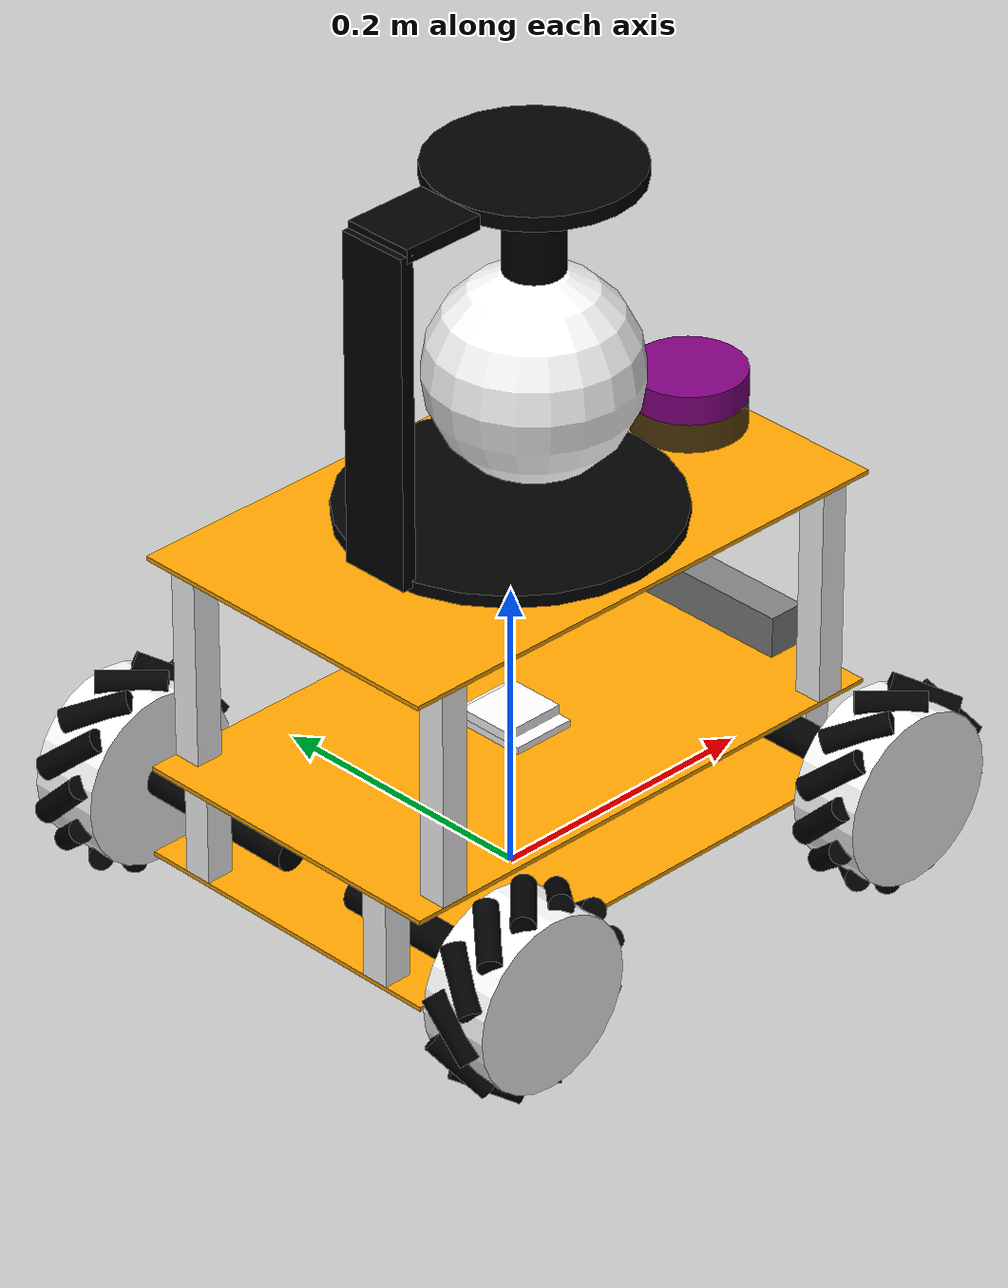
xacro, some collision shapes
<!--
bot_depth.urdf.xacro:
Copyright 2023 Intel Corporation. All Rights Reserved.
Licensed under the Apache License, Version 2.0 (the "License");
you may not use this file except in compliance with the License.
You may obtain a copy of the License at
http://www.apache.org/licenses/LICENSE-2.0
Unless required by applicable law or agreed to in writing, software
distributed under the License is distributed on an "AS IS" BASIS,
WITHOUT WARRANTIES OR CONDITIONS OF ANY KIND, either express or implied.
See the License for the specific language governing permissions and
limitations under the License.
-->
<robot xmlns:xacro="http://www.ros.org/wiki/xacro" name="bot">
    <xacro:include filename="inertia.urdf.xacro"/>
    <xacro:include filename="material.urdf.xacro"/>

    <xacro:include filename="bot_wheel.urdf.xacro"/>
    <xacro:include filename="bot_base.urdf.xacro"/>

    <!-- add camera -->
    <xacro:include filename="bot_camera.urdf.xacro"/>
    <xacro:camera_func parent="base_link_3">
        <origin xyz="0 0 0" rpy="0 0 0"/>
    </xacro:camera_func>

    <!-- add lidar -->
    <xacro:include filename="bot_lidar.urdf.xacro"/>
    <xacro:lidar_func parent="base_link_3">
        <origin xyz="${bot_length/2-lidar_radius} 0 ${bot_height/2+lidar_height/4}" rpy="0 0 0"/>
    </xacro:lidar_func>

    <!-- add depth camera -->
    <xacro:include filename="bot_depth.urdf.xacro"/>
    <xacro:sensor_d455 parent="base_link_2" use_nominal_extrinsics="false">
        <origin xyz="${bot_length/2-d455_cam_depth/2} 0 ${bot_height/2}" rpy="0 0 0"/>
    </xacro:sensor_d455>

    <!-- add imu -->
    <xacro:include filename="bot_imu.urdf.xacro"/>
    <xacro:imu_n100 parent="base_link_2">
        <origin xyz="0 0 ${bot_height/2}" rpy="0 0 0"/>
    </xacro:imu_n100>

    <!-- load gazebo plugins -->
    <xacro:include filename="bot_gazebo.xacro"/>
    <xacro:include filename="bot_gazebo_plugin.xacro"/>

</robot>

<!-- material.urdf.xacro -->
<robot xmlns:xacro="http://www.ros.org/wiki/xacro">

    <xacro:property name="alpha" value="1.0" />

    <material name="red">           <color rgba="${255/255}  ${0/255  } ${0/255  }  ${alpha}"/>    </material>
    <material name="redbright">     <color rgba="${255/255}  ${51/255 } ${51/255 }  ${alpha}"/>    </material>
    <material name="green">         <color rgba="${0/255  }  ${255/255} ${0/255  }  ${alpha}"/>    </material>
    <material name="blue">          <color rgba="${0/255  }  ${0/255  } ${255/255}  ${alpha}"/>    </material>
    <material name="skyblue">       <color rgba="${135/255}  ${206/255} ${250/255}  ${alpha}"/>    </material>
    <material name="yellow">        <color rgba="${255/255}  ${255/255} ${0/255  }  ${alpha}"/>    </material>
    <material name="zincyellow">    <color rgba="${255/255}  ${227/255} ${66/255 }  ${alpha}"/>    </material>
    <material name="darkyellow">    <color rgba="${204/255}  ${204/255} ${0/255  }  ${alpha}"/>    </material>
    <material name="purple">        <color rgba="${128/255}  ${0/255  } ${128/255}  ${alpha}"/>    </material>
    <material name="turquoise">     <color rgba="${64/255 }  ${224/255} ${208/255}  ${alpha}"/>    </material>
    <material name="orange">        <color rgba="${255/255}  ${165/255} ${0/255  }  ${alpha}"/>    </material>
    <material name="indigo">        <color rgba="${75/255 }  ${0/255  } ${130/255}  ${alpha}"/>    </material>
    <material name="white">         <color rgba="${255/255}  ${255/255} ${255/255}  ${alpha}"/>    </material>
    <material name="black">         <color rgba="${0/255  }  ${0/255  } ${0/255  }  ${alpha}"/>    </material>
    <material name="flatblack">     <color rgba="${5/255  }  ${5/255  } ${5/255  }  ${alpha}"/>    </material>
    <material name="grey">          <color rgba="${128/255}  ${128/255} ${128/255}  ${alpha}"/>    </material>
    <material name="darkgrey">      <color rgba="${64/255 }  ${64/255 } ${64/255 }  ${alpha}"/>    </material>
    <material name="plastic">       <color rgba="0.1 0.1 0.1 1"/>                                  </material>
</robot>

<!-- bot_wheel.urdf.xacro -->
<robot xmlns:xacro="http://ros.org/wiki/xacro">

    <!-- Properties -->
    <xacro:property name="roller_mass" value="0.02"/>
    <xacro:property name="roller_radius" value="0.008"/>
    <xacro:property name="roller_length" value="0.046"/>
    <xacro:property name="roller_number" value="12"/>

    <xacro:property name="wheel_radius" value="0.0635" />

    <xacro:property name="wheel_internal_radius" value="${wheel_radius-roller_radius/2}" />
    <xacro:property name="wheel_width" value="0.05" />
    <xacro:property name="wheel_mass" value="0.5" />

    <!-- Mecanum Wheel Macro -->
    <xacro:macro name="mecanum_wheel" params="name roller_angle">

        <!-- Derived Properties -->
        <xacro:property name="I_wheel_xx_yy" value="0.0250833333333333"/>
        <xacro:property name="I_wheel_zz" value="0.0100000000000000"/>
        <xacro:property name="I_roller_xx_yy" value="0.0008750000000000"/>
        <xacro:property name="I_roller_zz" value="0.0002000000000000"/>

        <!-- Main Wheel Body -->
        <link name="${name}">
        <visual>
            <geometry>
            <cylinder radius="${wheel_internal_radius}" length="${wheel_width}"/>
            </geometry>
            <material name="white"/>
        </visual>
        <collision>
            <geometry>
            <cylinder radius="${wheel_internal_radius}" length="${wheel_width}"/>
            </geometry>
        </collision>
        <inertial>
            <mass value="${wheel_mass}"/>
            <inertia ixx="${I_wheel_xx_yy}" ixy="0" ixz="0" iyy="${I_wheel_xx_yy}" iyz="0" izz="${I_wheel_zz}"/>
        </inertial>
        </link>

        <!-- Roller Macro -->
        <xacro:macro name="roller" params="name parent angle">
            <link name="${name}">
                <visual>
                    <geometry>
                    <cylinder radius="${roller_radius}" length="${roller_length}"/>
                    </geometry>
                    <material name="black"/>
                </visual>
                <collision>
                    <geometry>
                    <cylinder radius="${roller_radius}" length="${roller_length}"/>
                    </geometry>
                </collision>
                <inertial>
                    <mass value="${roller_mass}"/>
                    <inertia ixx="${I_roller_xx_yy}" ixy="0" ixz="0" iyy="${I_roller_xx_yy}" iyz="0" izz="${I_roller_zz}"/>
                </inertial>
            </link>

            <joint name="${name}_joint" type="continuous">
                <parent link="${parent}"/>
                <child link="${name}"/>
                <origin
                    xyz="${wheel_internal_radius*cos(angle)} ${wheel_internal_radius*sin(angle)} 0"
                    rpy="${roller_angle} 0 ${angle}"/>
                <axis xyz="0 0 1"/>
            </joint>
        </xacro:macro>

    <!-- Rollers -->
    <xacro:roller name="${name}_roller_1" parent="${name}" angle="0"/>
    <xacro:roller name="${name}_roller_2" parent="${name}" angle="${1*2*pi/roller_number}"/>
    <xacro:roller name="${name}_roller_3" parent="${name}" angle="${2*2*pi/roller_number}"/>
    <xacro:roller name="${name}_roller_4" parent="${name}" angle="${3*2*pi/roller_number}"/>
    <xacro:roller name="${name}_roller_5" parent="${name}" angle="${4*2*pi/roller_number}"/>
    <xacro:roller name="${name}_roller_6" parent="${name}" angle="${5*2*pi/roller_number}"/>
    <xacro:roller name="${name}_roller_7" parent="${name}" angle="${6*2*pi/roller_number}"/>
    <xacro:roller name="${name}_roller_8" parent="${name}" angle="${7*2*pi/roller_number}"/>
    <xacro:roller name="${name}_roller_9" parent="${name}" angle="${8*2*pi/roller_number}"/>
    <xacro:roller name="${name}_roller_10" parent="${name}" angle="${9*2*pi/roller_number}"/>
    <xacro:roller name="${name}_roller_11" parent="${name}" angle="${10*2*pi/roller_number}"/>
    <xacro:roller name="${name}_roller_12" parent="${name}" angle="${11*2*pi/roller_number}"/>
  </xacro:macro>

</robot>

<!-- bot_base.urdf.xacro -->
<robot xmlns:xacro="http://www.ros.org/wiki/xacro">

    <!-- variable declaration -->
    <xacro:property name="PI" value="3.141592653" />
    <!-- Define the distance between the chassis and the ground -->
    <xacro:property name="z_offset" value="0.037" />

    <!-- chassis parameters -->
    <xacro:property name="bot_length" value="0.387" />
    <xacro:property name="bot_width" value="0.238" />
    <xacro:property name="bot_height" value="0.003" />
    <xacro:property name="bot_mass" value="0.5" />
    <!-- pilllar parameters -->
    <xacro:property name="pillar_length" value="0.02" />
    <xacro:property name="pillar_width" value="0.02" />
    <xacro:property name="pillar_height_1" value="0.06" />
    <xacro:property name="pillar_height_2" value="0.15" />
    <xacro:property name="pillar_mass_1" value="0.02" />
    <xacro:property name="pillar_mass_2" value="0.05" />

    <!-- wheel parameters -->
    <xacro:property name="wheel_radius" value="0.0635" />
    <xacro:property name="wheel_length" value="0.05" />
    <xacro:property name="wheel_mass" value="0.5" />
    <xacro:property name="wheel_separation_w" value="0.36" />
    <xacro:property name="wheel_separation_l" value="0.32" />

    <!-- wheel joint offset -->
    <xacro:property name="wheel_base_dis" value="0.03" />
    <xacro:property name="wheel_joint_x" value="${wheel_separation_l/2}" />
    <xacro:property name="wheel_joint_y" value="${bot_width/2 + wheel_base_dis + wheel_length/2}" />
    <xacro:property name="wheel_joint_z" value="${wheel_radius-z_offset}" />

    <!-- motor parameters -->
    <xacro:property name="motor_radius" value="${wheel_radius-z_offset-0.015}" />
    <xacro:property name="motor_length" value="0.12" />
    <xacro:property name="motor_mass" value="0.3" />

    <link name="base_footprint"/>
    <!--   Define three chassis base_link_1 base_link_2 base_link_3-->
    <link name="base_link_1">
        <visual>
            <geometry>
                <box size="${bot_length} ${bot_width} ${bot_height}"/>
            </geometry>
            <material name="orange"/>
        </visual>
        <collision>
            <geometry>
                <box size="${bot_length} ${bot_width} ${bot_height}"/>
            </geometry>
        </collision>
        <xacro:box_inertial_matrix mass="${bot_mass}" length="${bot_length}" width="${bot_width}" height="${bot_height}" />
    </link>
    <joint name="base_joint" type="fixed">
        <parent link="base_footprint"/>
        <child link="base_link_1"/>
        <origin xyz="0.0 0.0 ${z_offset+bot_height/2}"/>
    </joint>

    <link name="base_link_2">
        <visual>
            <geometry>
                <box size="${bot_length} ${bot_width} ${bot_height}"/>
            </geometry>
            <material name="orange"/>
        </visual>
        <collision>
            <geometry>
                <box size="${bot_length} ${bot_width} ${bot_height}"/>
            </geometry>
        </collision>
        <xacro:box_inertial_matrix mass="${bot_mass}" length="${bot_length}" width="${bot_width}" height="${bot_height}" />
    </link>

    <link name="base_link_3">
        <visual>
            <geometry>
                <box size="${bot_length} ${bot_width} ${bot_height}"/>
            </geometry>
            <material name="orange"/>
        </visual>
        <collision>
            <geometry>
                <box size="${bot_length} ${bot_width} ${bot_height}"/>
            </geometry>
        </collision>
        <xacro:box_inertial_matrix mass="${bot_mass}" length="${bot_length}" width="${bot_width}" height="${bot_height}" />
    </link>

    <joint name="base12_joint" type="fixed">
        <parent link="base_link_1"/>
        <child link="base_link_2"/>
        <origin xyz="0.0 0.0 ${pillar_height_1+bot_height}"/>
    </joint>

    <joint name="base23_joint" type="fixed">
        <parent link="base_link_2"/>
        <child link="base_link_3"/>
        <origin xyz="0.0 0.0 ${pillar_height_2+bot_height}"/>
    </joint>

    <!-- wheel -->
    <xacro:macro name="wheel_func" params="link_name front_flag left_flag angle">
        <!-- wheel -->
        <xacro:property name="roller_angle" value="${PI/4}" />
        <xacro:mecanum_wheel name="${link_name}" roller_angle = "${angle*roller_angle}"/>

        <joint name="${link_name}_joint" type="continuous">
            <parent link="base_link_1"/>
            <child link="${link_name}"/>
            <origin xyz="${wheel_joint_x * front_flag} ${wheel_joint_y * left_flag} ${wheel_joint_z}" rpy="${3*pi/2} 0 0"/>
            <axis xyz="0 0 1"/>
        </joint>

        <!-- pillar -->
        <link name="${link_name}_p1">
            <visual>
                <geometry>
                    <box size="${pillar_length} ${pillar_width} ${pillar_height_1}"/>
                </geometry>
                <material name="white"/>
            </visual>
            <collision>
                <geometry>
                    <box size="${pillar_length} ${pillar_width} ${pillar_height_1}"/>
                </geometry>
            </collision>
            <xacro:box_inertial_matrix mass="${pillar_mass_1}" length="${pillar_length}" width="${pillar_width}" height="${pillar_height_1}" />
        </link>

        <link name="${link_name}_p2">
            <visual>
                <geometry>
                    <box size="${pillar_length} ${pillar_width} ${pillar_height_2}"/>
                </geometry>
                <material name="white"/>
            </visual>
            <collision>
                <geometry>
                    <box size="${pillar_length} ${pillar_width} ${pillar_height_2}"/>
                </geometry>
            </collision>
            <xacro:box_inertial_matrix mass="${pillar_mass_2}" length="${pillar_length}" width="${pillar_width}" height="${pillar_height_2}" />
        </link>

        <joint name="${link_name}_p1base_joint" type="fixed">
            <parent link="base_link_1"/>
            <child link="${link_name}_p1"/>
            <origin xyz="${(bot_length/2-pillar_length/2) * front_flag} ${(bot_width/3) * left_flag} ${bot_height/2+pillar_height_1/2}"/>
        </joint>

        <joint name="${link_name}_p2base_joint" type="fixed">
            <parent link="base_link_2"/>
            <child link="${link_name}_p2"/>
            <origin xyz="${(bot_length/2-pillar_length/2*3) * front_flag} ${(bot_width/2-pillar_width/2) * left_flag} ${pillar_height_2/2+bot_height/2}"/>
        </joint>

        <!-- motor -->
        <link name="${link_name}_motor">
            <visual>
                <geometry>
                    <cylinder radius="${motor_radius}" length="${motor_length}"/>
                </geometry>
                <material name="black"/>
                <origin rpy="${PI/2} 0.0 0.0"/>
            </visual>
            <collision>
                <geometry>
                    <cylinder radius="${motor_radius}" length="${motor_length}"/>
                </geometry>
                <origin rpy="${PI/2} 0.0 0.0"/>
            </collision>
            <xacro:cylinder_inertial_matrix mass="${motor_mass}" radius="${motor_radius}" length="${motor_length}" />
        </link>

        <joint name="${link_name}_motor_joint" type="fixed">
            <parent link="base_link_1"/>
            <child link="${link_name}_motor"/>
            <origin xyz="${wheel_joint_x * front_flag} ${((bot_width-motor_length)/2+wheel_base_dis) * left_flag} ${wheel_joint_z}"/>
            <axis xyz="0 1 0"/>
        </joint>

    </xacro:macro>

    <xacro:wheel_func link_name="front_left" front_flag="1" left_flag="1" angle="-1"/>
    <xacro:wheel_func link_name="front_right" front_flag="1" left_flag="-1 " angle="1"/>
    <xacro:wheel_func link_name="back_left" front_flag="-1" left_flag="1" angle="1"/>
    <xacro:wheel_func link_name="back_right" front_flag="-1" left_flag="-1" angle="-1"/>

</robot>

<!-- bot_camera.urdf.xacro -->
<robot name="camera_func" xmlns:xacro="http://www.ros.org/wiki/xacro">
    <xacro:property name="camera_radius" value="0.07" />
    <xacro:property name="foothold_radius" value="0.111" />
    <xacro:property name="foothold_height" value="0.01" />
    <xacro:macro name="camera_func" params="parent *origin">
        <link name="camera_base_footprint" />
        <joint name="camera_base_joint" type="fixed">
            <xacro:insert_block name="origin"/>
            <parent link="${parent}"/>
            <child link="camera_base_footprint"/>
        </joint>

        <link name="foothold_base_1">
            <visual>
                <geometry>
                    <cylinder radius="${foothold_radius}" length="${foothold_height}"/>
                </geometry>
                <material name="black" />
            </visual>
            <collision>
                <geometry>
                    <cylinder radius="${foothold_radius}" length="${foothold_height}"/>
                </geometry>
            </collision>
            <xacro:cylinder_inertial_matrix mass="0.5" radius="${foothold_radius}" length="${foothold_height}"/>
        </link>

        <joint name="fb1_2base_link3" type="fixed">
            <parent link="camera_base_footprint"/>
            <child link="foothold_base_1"/>
            <origin xyz="0.0 0.0 ${foothold_height/2}"/>
        </joint>

        <link name="foothold_base_2">
            <visual>
                <geometry>
                    <box size="${foothold_height} 0.05 0.23"/>
                </geometry>
                <material name="black" />
            </visual>
            <collision>
                <geometry>
                    <box size="${foothold_height} 0.05 0.23"/>
                </geometry>
            </collision>
            <xacro:box_inertial_matrix mass="0.1" length="${foothold_height}" width="0.05" height="0.23"/>
        </link>
        <joint name="foothold_base12_joint" type="fixed">
            <parent link="foothold_base_1"/>
            <child link="foothold_base_2"/>
            <origin xyz="${-foothold_radius+0.001} 0.0 0.115"/>
        </joint>

        <link name="foothold_base_3">
            <visual>
                <geometry>
                    <box size="0.06 0.05 ${foothold_height}"/>
                </geometry>
                <material name="black" />
            </visual>
            <collision>
                <geometry>
                    <box size="0.06 0.05 ${foothold_height}"/>
                </geometry>
            </collision>
            <xacro:box_inertial_matrix mass="0.1" length="0.06" width="0.05" height="${foothold_height}"/>
        </link>
        <joint name="foothold_base23_joint" type="fixed">
            <parent link="foothold_base_2"/>
            <child link="foothold_base_3"/>
            <origin xyz="0.03 0.0 0.115"/>
        </joint>

        <link name="foothold_base_4">
            <visual>
                <geometry>
                    <cylinder radius="0.07" length="${foothold_height}"/>
                </geometry>
                <material name="black" />
            </visual>
            <collision>
                <geometry>
                    <cylinder radius="0.07" length="${foothold_height}"/>
                </geometry>
            </collision>
            <xacro:cylinder_inertial_matrix mass="0.1" radius="0.07" length="${foothold_height}"/>
        </link>
        <joint name="foothold_base34_joint" type="fixed">
            <parent link="foothold_base_3"/>
            <child link="foothold_base_4"/>
            <origin xyz="0.1 0.0 0.0"/>
        </joint>

        <link name="camera_link">
            <visual>
                <geometry>
                    <cylinder radius="0.02" length="0.07"/>
                </geometry>
                <material name="black" />
            </visual>
            <collision>
                <geometry>
                    <cylinder radius="0.02" length="0.07"/>
                </geometry>
            </collision>
            <xacro:cylinder_inertial_matrix mass="0.2" radius="0.02" length="0.007"/>
        </link>
        <joint name="camera_link2foothold4" type="fixed">
            <parent link="foothold_base_4"/>
            <child link="camera_link"/>
            <origin xyz="0.0 0.0 -0.035"/>
            <axis xyz="0.0 0.0 1"/>
        </joint>

        <link name="camera">
            <visual>
                <geometry>
                    <sphere radius="${camera_radius}"/>
                </geometry>
                <material name="white"/>
            </visual>
            <collision>
                <geometry>
                    <sphere radius="${camera_radius}"/>
                </geometry>
            </collision>
            <xacro:sphere_inertial_matrix mass="0.2" radius="${camera_radius}" />
        </link>
        <joint name="camera_link2camera" type="fixed">
            <parent link="camera_link"/>
            <child link="camera"/>
            <origin xyz="0.0 0.0 ${-(camera_radius+0.035)}"/>
        </joint>
    </xacro:macro>
</robot>

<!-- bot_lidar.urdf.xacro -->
<robot name="lidar" xmlns:xacro="http://www.ros.org/wiki/xacro">

    <xacro:property name="lidar_radius" value="0.038" />
    <xacro:property name="lidar_height" value="0.04" />

    <xacro:macro name="lidar_func" params="parent *origin">

        <link name="lidar_base_footprint"/>
        <joint name="lidar_footprint_joint" type="fixed">
            <xacro:insert_block name="origin" />
            <parent link="${parent}"/>
            <child link="lidar_base_footprint"/>
        </joint>

        <link name="lidarbase">
            <visual>
                <geometry>
                    <cylinder radius="${lidar_radius}" length="${lidar_height/2}"/>
                </geometry>

                <material name="black">
                    <color rgba="0.1 0.1 0.1 0.8"/>
                </material>
            </visual>
            <collision>
                <geometry>
                    <cylinder radius="${lidar_radius}" length="${lidar_height/2}"/>
                </geometry>
            </collision>
            <xacro:cylinder_inertial_matrix mass="0.3" radius="${lidar_radius}" length="${lidar_height/2}" />
        </link>

        <joint name="lidarbase2base_footprint" type="fixed">
            <parent link="lidar_base_footprint"/>
            <child link="lidarbase"/>
        </joint>

        <link name="lidar">
            <visual>
                <geometry>
                    <cylinder radius="${lidar_radius}" length="${lidar_height/2}"/>
                </geometry>
                <material name="purple"/>
            </visual>
            <collision>
                <geometry>
                    <cylinder radius="${lidar_radius}" length="${lidar_height/2}"/>
                </geometry>
            </collision>
            <xacro:cylinder_inertial_matrix mass="0.3" radius="${lidar_radius}" length="${lidar_height/2}" />
        </link>
        <joint name="lidar_joint" type="fixed">
            <parent link="lidarbase"/>
            <child link="lidar"/>
            <origin xyz="0 0 ${lidar_height/2}"/>
            <axis xyz="0 0 1"/>
        </joint>

    </xacro:macro>
</robot>

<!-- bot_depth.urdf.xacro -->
<!--
This is the URDF model for the Intel RealSense 430 camera, in its
grey peripherial evaluation case.
-->

<robot name="sensor_d455" xmlns:xacro="http://ros.org/wiki/xacro">

  <!-- The following values are approximate, and the camera node
    publishing TF values with actual calibrated camera extrinsic values -->
  <xacro:property name="d455_cam_depth_to_infra1_offset" value="0.0"/>
  <xacro:property name="d455_cam_depth_to_infra2_offset" value="-0.095"/>
  <xacro:property name="d455_cam_depth_to_color_offset" value="-0.059"/>

  <!-- The following values model the grey peripherial case for the
  d455 camera, with the camera joint represented by the actual
  peripherial camera tripod mount -->
  <xacro:property name="d455_cam_width" value="0.124"/>
  <xacro:property name="d455_cam_height" value="0.029"/>
  <xacro:property name="d455_cam_depth" value="0.026"/>
  <xacro:property name="d455_cam_mount_from_center_offset" value="0.0158"/>
  <!-- glass cover is 0.1 mm inwards from front aluminium plate -->
  <xacro:property name="d455_glass_to_front" value="0.1e-3"/>
  <!-- see datasheet Revision 009, Fig. 4-4 page 68 -->
  <xacro:property name="d455_zero_depth_to_glass" value="4.55e-3"/>
  <!-- convenience precomputation to avoid clutter-->
  <xacro:property name="d455_mesh_x_offset" value="${d455_cam_mount_from_center_offset-d455_glass_to_front-d455_zero_depth_to_glass}"/>

  <!-- The following offset is relative to the physical d455 camera peripherial
  camera tripod mount -->
  <xacro:property name="d455_cam_depth_px" value="${d455_cam_mount_from_center_offset}"/>
  <xacro:property name="d455_cam_depth_py" value="0.0475"/>
  <xacro:property name="d455_cam_depth_pz" value="${d455_cam_height/2}"/>

  <xacro:macro name="sensor_d455" params="parent *origin name:=depth use_nominal_extrinsics:=false">
    <xacro:property name="M_PI" value="3.1415926535897931" />

    <!-- camera body, with origin at bottom screw mount -->
    <joint name="${name}_joint" type="fixed">
      <xacro:insert_block name="origin" />
      <parent link="${parent}"/>
      <child link="${name}_bottom_screw_frame" />
    </joint>
    <link name="${name}_bottom_screw_frame"/>

    <joint name="${name}_link_joint" type="fixed">
      <origin xyz="${d455_mesh_x_offset} ${d455_cam_depth_py} ${d455_cam_depth_pz}" rpy="0 0 0"/>
      <parent link="${name}_bottom_screw_frame"/>
      <child link="${name}_link" />
    </joint>

    <link name="${name}_link">
      <visual>
        <!-- the mesh origin is at front plate in between the two infrared camera axes -->
        <origin xyz="${d455_zero_depth_to_glass + d455_glass_to_front} ${-d455_cam_depth_py} 0" rpy="${M_PI/2} 0 ${M_PI/2}"/>
        <geometry>
	        <mesh filename="file://$(find bot_description)/meshes/d455.stl" scale="0.001 0.001 0.001" />
        </geometry>
        <material name="grey"/>
      </visual>
      <collision>
        <origin xyz="${d455_zero_depth_to_glass-d455_cam_depth/2} ${-d455_cam_depth_py} 0" rpy="0 0 0"/>
        <geometry>
          <box size="${d455_cam_depth} ${d455_cam_width} ${d455_cam_height}"/>
        </geometry>
      </collision>
      <inertial>
        <!-- The following are not reliable values, and should not be used for modeling -->
        <mass value="0.072" />
        <origin xyz="0 0 0" />
        <inertia ixx="0.003881243" ixy="0.0" ixz="0.0" iyy="0.000498940" iyz="0.0" izz="0.003879257" />
      </inertial>
    </link>

    <!-- Use the nominal extrinsics between camera frames if the calibrated extrinsics aren't being published. e.g. running the device in simulation  -->
    <xacro:if value="${use_nominal_extrinsics}">
      <!-- camera depth joints and links -->
      <joint name="${name}_depth_joint" type="fixed">
        <origin xyz="0 0 0" rpy="0 0 0"/>
        <parent link="${name}_link"/>
        <child link="${name}_depth_frame" />
      </joint>
      <link name="${name}_depth_frame"/>

      <joint name="${name}_depth_optical_joint" type="fixed">
        <origin xyz="0 0 0" rpy="${-M_PI/2} 0 ${-M_PI/2}" />
        <parent link="${name}_depth_frame" />
        <child link="${name}_depth_optical_frame" />
      </joint>
      <link name="${name}_depth_optical_frame"/>

      <!-- camera left IR joints and links -->
      <joint name="${name}_infra1_joint" type="fixed">
        <origin xyz="0 ${d455_cam_depth_to_infra1_offset} 0" rpy="0 0 0" />
        <parent link="${name}_link" />
        <child link="${name}_infra1_frame" />
      </joint>
      <link name="${name}_infra1_frame"/>

      <joint name="${name}_infra1_optical_joint" type="fixed">
        <origin xyz="0 0 0" rpy="${-M_PI/2} 0 ${-M_PI/2}" />
        <parent link="${name}_infra1_frame" />
        <child link="${name}_infra1_optical_frame" />
      </joint>
      <link name="${name}_infra1_optical_frame"/>

      <!-- camera right IR joints and links -->
      <joint name="${name}_infra2_joint" type="fixed">
        <origin xyz="0 ${d455_cam_depth_to_infra2_offset} 0" rpy="0 0 0" />
        <parent link="${name}_link" />
        <child link="${name}_infra2_frame" />
      </joint>
      <link name="${name}_infra2_frame"/>

      <joint name="${name}_infra2_optical_joint" type="fixed">
        <origin xyz="0 0 0" rpy="${-M_PI/2} 0 ${-M_PI/2}" />
        <parent link="${name}_infra2_frame" />
        <child link="${name}_infra2_optical_frame" />
      </joint>
      <link name="${name}_infra2_optical_frame"/>

      <!-- camera color joints and links -->
      <joint name="${name}_color_joint" type="fixed">
        <origin xyz="0 ${d455_cam_depth_to_color_offset} 0" rpy="0 0 0" />
        <parent link="${name}_link" />
        <child link="${name}_color_frame" />
      </joint>
      <link name="${name}_color_frame"/>

      <joint name="${name}_color_optical_joint" type="fixed">
        <origin xyz="0 0 0" rpy="${-M_PI/2} 0 ${-M_PI/2}" />
        <parent link="${name}_color_frame" />
        <child link="${name}_color_optical_frame" />
      </joint>
      <link name="${name}_color_optical_frame"/>

      <!-- IMU -->
      <!-- see datasheet Revision 009, page 114 -->
      <xacro:property name="d455_imu_px" value="-0.01602"/>
      <xacro:property name="d455_imu_py" value="-0.03022"/>
      <xacro:property name="d455_imu_pz" value="+0.0074"/>

      <link name="${name}_accel_frame" />
      <link name="${name}_accel_optical_frame" />
      <link name="${name}_gyro_frame" />
      <link name="${name}_gyro_optical_frame" />
      <link name="${name}_imu_optical_frame" />

      <joint name="${name}_accel_joint" type="fixed">
        <origin xyz = "${d455_imu_px} ${d455_imu_py} ${d455_imu_pz}" rpy = "0 0 0" />
        <parent link="${name}_link" />
        <child link="${name}_accel_frame" />
      </joint>

      <joint name="${name}_accel_optical_joint" type="fixed">
        <origin xyz = "0 0 0" rpy = "${-M_PI/2} 0 ${-M_PI/2}" />
        <parent link="${name}_accel_frame" />
        <child link="${name}_accel_optical_frame" />
      </joint>

      <joint name="${name}_gyro_joint" type="fixed">
        <origin xyz = "${d455_imu_px} ${d455_imu_py} ${d455_imu_pz}" rpy = "0 0 0" />
        <parent link="${name}_link" />
        <child link="${name}_gyro_frame" />
      </joint>

      <joint name="${name}_gyro_optical_joint" type="fixed">
        <origin xyz = "0 0 0" rpy = "${-M_PI/2} 0 ${-M_PI/2}" />
        <parent link="${name}_gyro_frame" />
        <child link="${name}_gyro_optical_frame" />
      </joint>

      <joint name="${name}_imu_optical_joint" type="fixed">
        <origin xyz = "0 0 0" rpy = "0 0 0" />
        <parent link="${name}_gyro_optical_frame" />
        <child link="${name}_imu_optical_frame" />
      </joint>
    </xacro:if>
  </xacro:macro>
</robot>

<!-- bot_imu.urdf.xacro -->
<robot name="imu_n100" xmlns:xacro="http://www.ros.org/wiki/xacro">
    <xacro:macro name="imu_n100" params="parent *origin">
        <xacro:property name="n100_base_width" value="0.0595"/>
        <xacro:property name="n100_base_height" value="0.005"/>
        <xacro:property name="n100_base_length" value="0.046"/>

        <xacro:property name="n100_width" value="0.04"/>
        <xacro:property name="n100_height" value="0.0067"/>
        <xacro:property name="n100_length" value="${n100_base_length}"/>

        <xacro:property name="n100_mass" value="0.0067"/>
        <link name="n100_base_footprint"/>
        <joint name="n100_base_joint1" type="fixed">
            <xacro:insert_block name="origin" />
            <parent link="${parent}"/>
            <child link="n100_base_footprint"/>
        </joint>

        <link name="n100_base_link">
            <visual>
                <geometry>
                    <box size="${n100_base_length} ${n100_base_width} ${n100_base_height}"/>
                </geometry>
                <material name="white"/>
            </visual>
            <collision>
                <geometry>
                    <box size="${n100_base_length} ${n100_base_width} ${n100_base_height}"/>
                </geometry>
            </collision>
            <xacro:box_inertial_matrix mass="${n100_mass/2}" length="${n100_base_length}" width="${n100_base_width}" height="${n100_base_height}" />
        </link>

        <joint name="n100_base_joint" type="fixed">
            <origin xyz="0.0 0.0 ${n100_base_height/2}"/>
            <xacro:insert_block name="origin" />
            <parent link="n100_base_footprint"/>
            <child link="n100_base_link"/>
        </joint>

        <link name="imu_n100">
            <visual>
                <geometry>
                    <box size="${n100_length} ${n100_width} ${n100_height}"/>
                </geometry>
                <material name="white"/>
            </visual>
            <collision>
                <geometry>
                    <box size="${n100_length} ${n100_width} ${n100_height}"/>
                </geometry>
            </collision>
            <xacro:box_inertial_matrix mass="${n100_mass/2}" length="${n100_length}" width="${n100_width}" height="${n100_height}" />
        </link>

        <joint name="n100_joint" type="fixed">
            <origin xyz="0.0 0.0 ${n100_base_height/2+n100_height/2}"/>
            <parent link="n100_base_link"/>
            <child link="imu_n100"/>
        </joint>

    </xacro:macro>
</robot>
